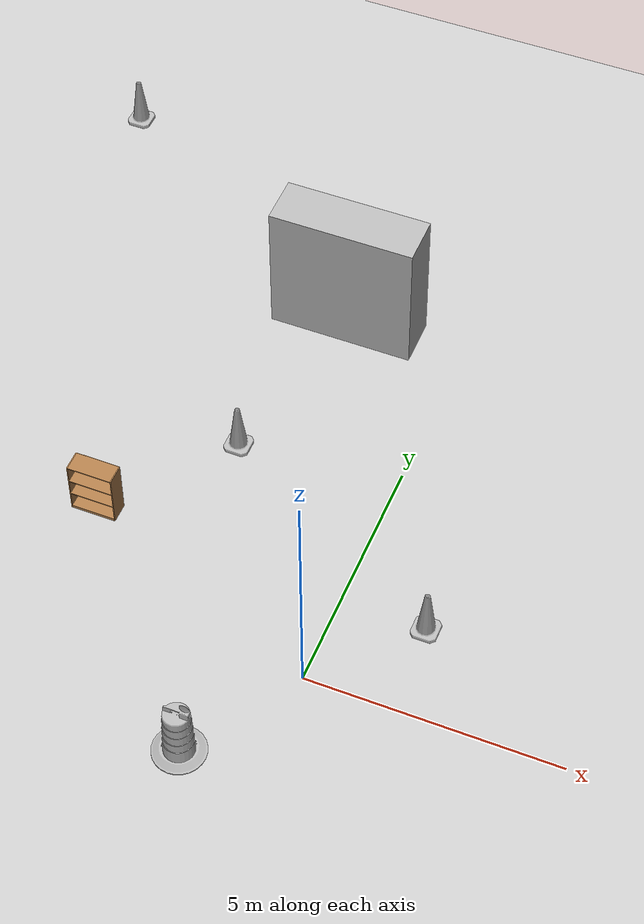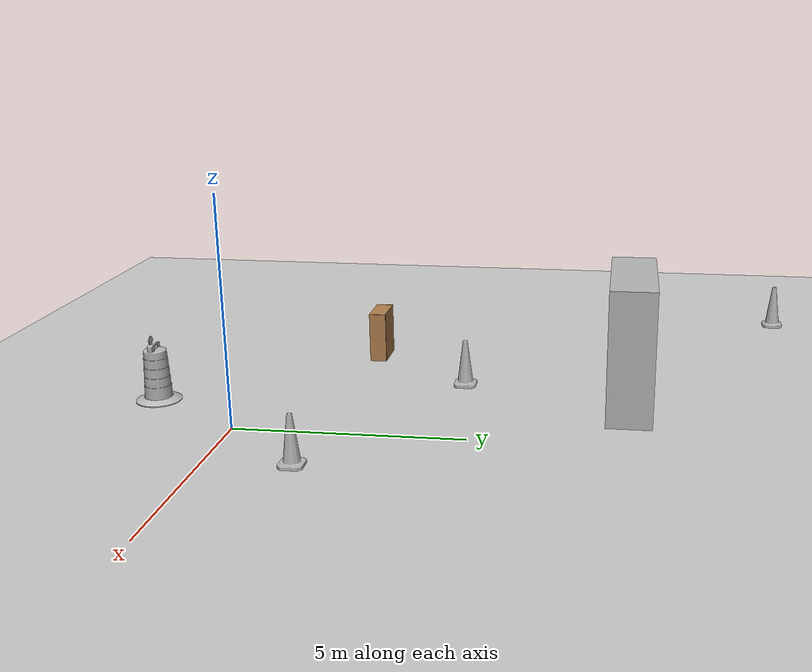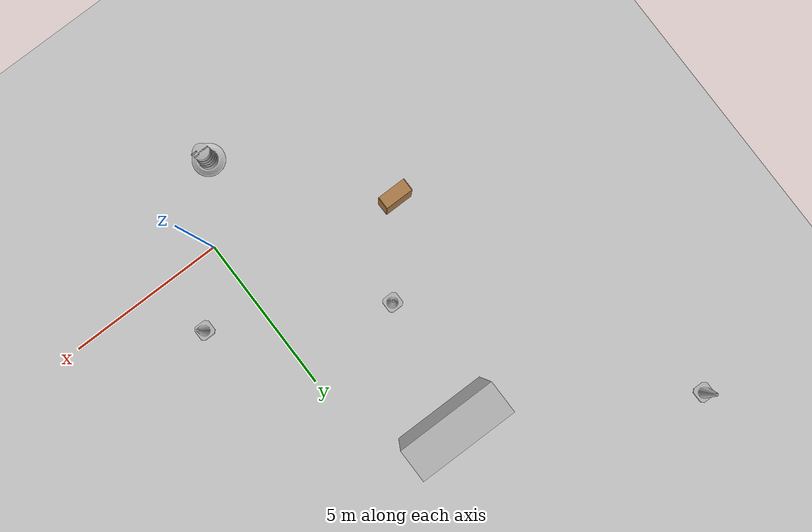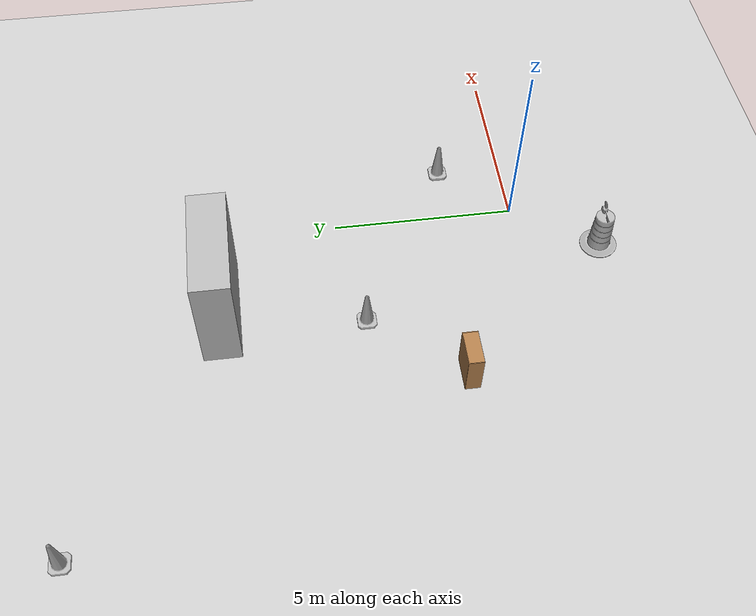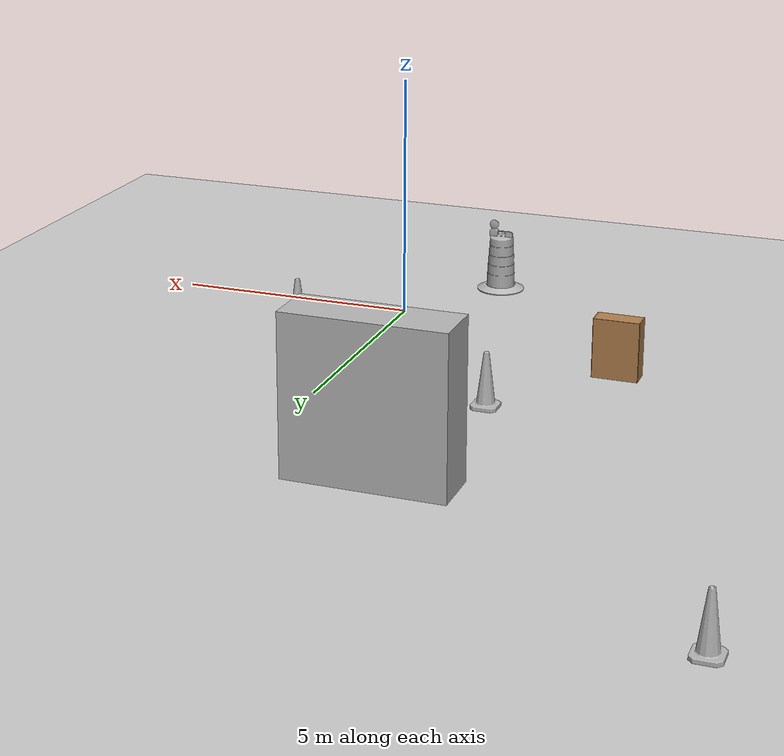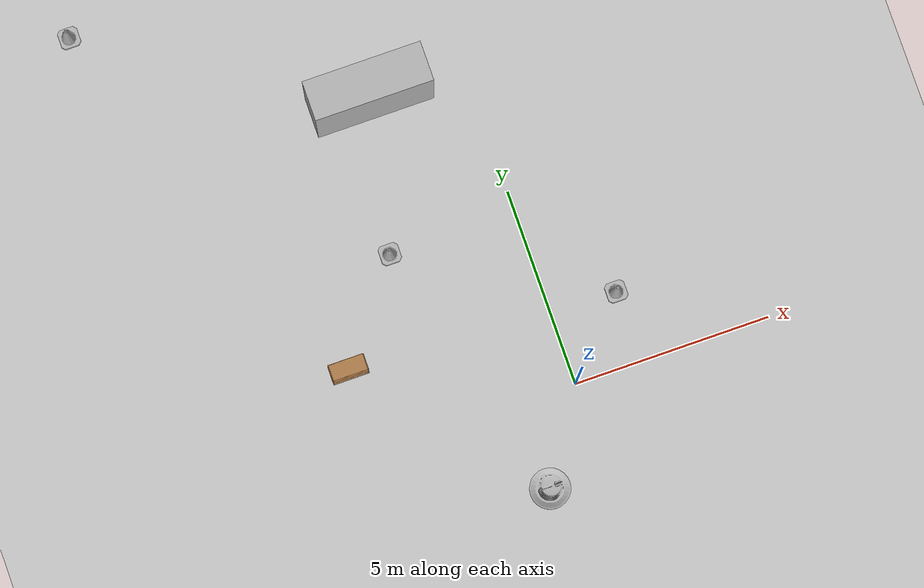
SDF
<sdf version="1.7">
 <world name="default">
  <light name="sun" type="directional">
   <pose>0 0 10 0 -0 0</pose>
   <diffuse>0.8 0.8 0.8 1</diffuse>
   <specular>0.2 0.2 0.2 1</specular>
   <attenuation>
    <range>1000</range>
    <constant>0.9</constant>
    <linear>0.01</linear>
    <quadratic>0.001</quadratic>
   </attenuation>
   <direction>-0.5 0.1 -0.9</direction>
   <spot><inner_angle>0</inner_angle><outer_angle>0</outer_angle><falloff>0</falloff></spot>
  </light>
  <model name="ground_plane">
   <static>1</static>
   <link name="link">
    <collision name="collision">
     <geometry><plane><normal>0 0 1</normal><size>100 100</size></plane></geometry>
     <surface>
      <contact><collide_bitmask>65535</collide_bitmask></contact>
      <friction><ode><mu>100</mu><mu2>50</mu2></ode></friction>
     </surface>
    </collision>
    <visual name="visual">
     <cast_shadows>0</cast_shadows>
     <geometry><plane><normal>0 0 1</normal><size>100 100</size></plane></geometry>
     <material>
      <script><uri>file://media/materials/scripts/gazebo.material</uri><name>Gazebo/Grey</name></script>
     </material>
    </visual>
   </link>
  </model>
  <gravity>0 0 -9.8</gravity>
  <magnetic_field>6e-06 2.3e-05 -4.2e-05</magnetic_field>
  <atmosphere type="adiabatic"/>
  <physics type="ode">
   <max_step_size>0.001</max_step_size>
   <real_time_factor>1</real_time_factor>
   <real_time_update_rate>1000</real_time_update_rate>
  </physics>
  <scene><ambient>0.4 0.4 0.4 1</ambient><background>0.7 0.7 0.7 1</background><shadows>1</shadows></scene>
  <audio><device>default</device></audio>
  <spherical_coordinates>
   <surface_model>EARTH_WGS84</surface_model>
   <latitude_deg>0</latitude_deg>
   <longitude_deg>0</longitude_deg>
   <elevation>0</elevation>
   <heading_deg>0</heading_deg>
  </spherical_coordinates>
  <model name="bookshelf">
   <static>1</static>
   <link name="link">
    <inertial><mass>1</mass></inertial>
    <collision name="back">
     <pose>0 0.005 0.6 0 -0 0</pose>
     <geometry><box><size>0.9 0.01 1.2</size></box></geometry>
    </collision>
    <visual name="visual1">
     <pose>0 0.005 0.6 0 -0 0</pose>
     <geometry><box><size>0.9 0.01 1.2</size></box></geometry>
     <material>
      <script><uri>file://media/materials/scripts/gazebo.material</uri><name>Gazebo/Wood</name></script>
     </material>
    </visual>
    <collision name="left_side">
     <pose>0.45 -0.195 0.6 0 -0 0</pose>
     <geometry><box><size>0.02 0.4 1.2</size></box></geometry>
    </collision>
    <visual name="visual2">
     <pose>0.45 -0.195 0.6 0 -0 0</pose>
     <geometry><box><size>0.02 0.4 1.2</size></box></geometry>
     <material>
      <script><uri>file://media/materials/scripts/gazebo.material</uri><name>Gazebo/Wood</name></script>
     </material>
    </visual>
    <collision name="right_side">
     <pose>-0.45 -0.195 0.6 0 -0 0</pose>
     <geometry><box><size>0.02 0.4 1.2</size></box></geometry>
    </collision>
    <visual name="visual3">
     <pose>-0.45 -0.195 0.6 0 -0 0</pose>
     <geometry><box><size>0.02 0.4 1.2</size></box></geometry>
     <material>
      <script><uri>file://media/materials/scripts/gazebo.material</uri><name>Gazebo/Wood</name></script>
     </material>
    </visual>
    <collision name="bottom">
     <pose>0 -0.195 0.03 0 -0 0</pose>
     <geometry><box><size>0.88 0.4 0.06</size></box></geometry>
    </collision>
    <visual name="visual4">
     <pose>0 -0.195 0.03 0 -0 0</pose>
     <geometry><box><size>0.88 0.4 0.06</size></box></geometry>
     <material>
      <script><uri>file://media/materials/scripts/gazebo.material</uri><name>Gazebo/Wood</name></script>
     </material>
    </visual>
    <collision name="top">
     <pose>0 -0.195 1.19 0 -0 0</pose>
     <geometry><box><size>0.88 0.4 0.02</size></box></geometry>
    </collision>
    <visual name="visual5">
     <pose>0 -0.195 1.19 0 -0 0</pose>
     <geometry><box><size>0.88 0.4 0.02</size></box></geometry>
     <material>
      <script><uri>file://media/materials/scripts/gazebo.material</uri><name>Gazebo/Wood</name></script>
     </material>
    </visual>
    <collision name="low_shelf">
     <pose>0 -0.195 0.43 0 -0 0</pose>
     <geometry><box><size>0.88 0.4 0.02</size></box></geometry>
    </collision>
    <visual name="visual6">
     <pose>0 -0.195 0.43 0 -0 0</pose>
     <geometry><box><size>0.88 0.4 0.02</size></box></geometry>
     <material>
      <script><uri>file://media/materials/scripts/gazebo.material</uri><name>Gazebo/Wood</name></script>
     </material>
    </visual>
    <collision name="high_shelf">
     <pose>0 -0.195 0.8 0 -0 0</pose>
     <geometry><box><size>0.88 0.4 0.02</size></box></geometry>
    </collision>
    <visual name="visual7">
     <pose>0 -0.195 0.8 0 -0 0</pose>
     <geometry><box><size>0.88 0.4 0.02</size></box></geometry>
     <material>
      <script><uri>file://media/materials/scripts/gazebo.material</uri><name>Gazebo/Wood</name></script>
     </material>
    </visual>
   </link>
   <pose>-5.13241 2.30855 0 0 -0 0</pose>
  </model>
  <model name="brick_box_3x1x3">
   <static>1</static>
   <link name="chassis">
    <pose>0 0 1.5 0 -0 0</pose>
    <collision name="collision"><geometry><box><size>3 1 3</size></box></geometry></collision>
    <visual name="visual">
     <geometry><mesh><uri>model://brick_box_3x1x3/meshes/simple_box.dae</uri><scale>3 1 3</scale></mesh></geometry>
     <material>
      <script>
       <uri>model://brick_box_3x1x3/materials/scripts</uri>
       <uri>model://brick_box_3x1x3/materials/textures</uri>
       <name>BrickBox/Diffuse</name>
      </script>
     </material>
    </visual>
   </link>
   <pose>-2.45031 8.30407 0 0 -0 0</pose>
  </model>
  <model name="Construction Cone">
   <link name="link">
    <collision name="collision">
     <geometry>
      <mesh><scale>10 10 10</scale><uri>model://construction_cone/meshes/construction_cone.dae</uri></mesh>
     </geometry>
    </collision>
    <visual name="visual">
     <geometry>
      <mesh><scale>10 10 10</scale><uri>model://construction_cone/meshes/construction_cone.dae</uri></mesh>
     </geometry>
    </visual>
    <inertial>
     <inertia><ixx>1</ixx><ixy>0</ixy><ixz>0</ixz><iyy>1</iyy><iyz>0</iyz><izz>1</izz></inertia>
     <mass>1</mass>
    </inertial>
   </link>
   <pose>-8.94199 12.1592 -0 0 -0 0</pose>
  </model>
  <model name="Construction Cone_0">
   <link name="link">
    <collision name="collision">
     <geometry>
      <mesh><scale>10 10 10</scale><uri>model://construction_cone/meshes/construction_cone.dae</uri></mesh>
     </geometry>
    </collision>
    <visual name="visual">
     <geometry>
      <mesh><scale>10 10 10</scale><uri>model://construction_cone/meshes/construction_cone.dae</uri></mesh>
     </geometry>
    </visual>
    <inertial>
     <inertia><ixx>1</ixx><ixy>0</ixy><ixz>0</ixz><iyy>1</iyy><iyz>0</iyz><izz>1</izz></inertia>
     <mass>1</mass>
    </inertial>
   </link>
   <pose>-3.24148 4.5048 -8e-06 -6e-06 -0 -0</pose>
  </model>
  <model name="Construction Barrel">
   <link name="link">
    <inertial>
     <pose>0 0 0.4 0 -0 0</pose>
     <mass>500</mass>
     <inertia><ixx>51.2096</ixx><iyy>51.2096</iyy><izz>25</izz><ixy>0</ixy><ixz>0</ixz><iyz>0</iyz></inertia>
    </inertial>
    <collision name="collision">
     <geometry><mesh><uri>model://construction_barrel/meshes/construction_barrel.dae</uri></mesh></geometry>
    </collision>
    <visual name="visual">
     <geometry><mesh><uri>model://construction_barrel/meshes/construction_barrel.dae</uri></mesh></geometry>
    </visual>
   </link>
   <pose>-1.44089 -2.20724 0 0 0 -3e-06</pose>
  </model>
  <model name="Construction Cone_1">
   <link name="link">
    <collision name="collision">
     <geometry>
      <mesh><scale>10 10 10</scale><uri>model://construction_cone/meshes/construction_cone.dae</uri></mesh>
     </geometry>
    </collision>
    <visual name="visual">
     <geometry>
      <mesh><scale>10 10 10</scale><uri>model://construction_cone/meshes/construction_cone.dae</uri></mesh>
     </geometry>
    </visual>
    <inertial>
     <inertia><ixx>1</ixx><ixy>0</ixy><ixz>0</ixz><iyy>1</iyy><iyz>0</iyz><izz>1</izz></inertia>
     <mass>1</mass>
    </inertial>
   </link>
   <pose>1.68704 1.81136 -0 0 -1e-06 0</pose>
  </model>
 </world>
</sdf>
